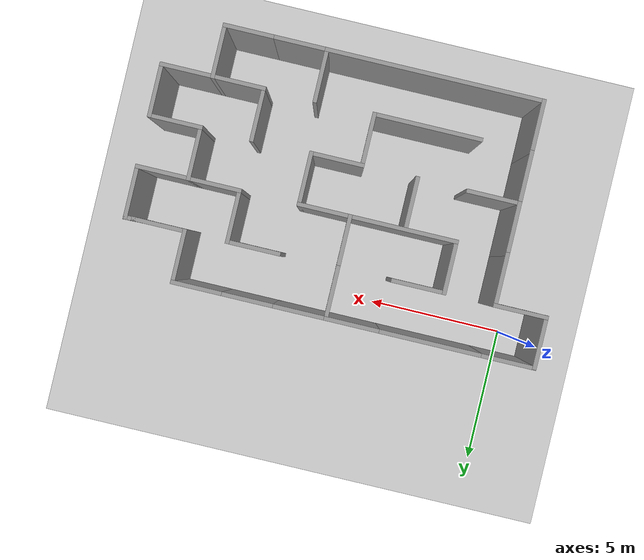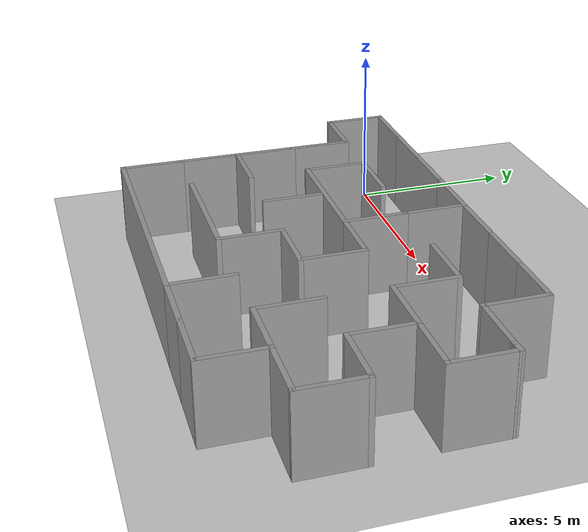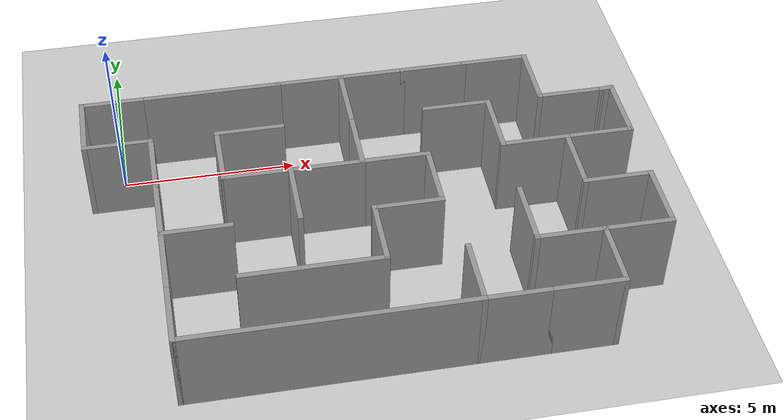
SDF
<sdf version="1.7">
 <world name="default">
  <light name="sun" type="directional">
   <pose>0 0 10 0 -0 0</pose>
   <diffuse>0.8 0.8 0.8 1</diffuse>
   <specular>0.2 0.2 0.2 1</specular>
   <attenuation>
    <range>1000</range>
    <constant>0.9</constant>
    <linear>0.01</linear>
    <quadratic>0.001</quadratic>
   </attenuation>
   <direction>-0.5 0.1 -0.9</direction>
   <spot><inner_angle>0</inner_angle><outer_angle>0</outer_angle><falloff>0</falloff></spot>
  </light>
  <model name="ground_plane">
   <static>1</static>
   <link name="link">
    <collision name="collision">
     <geometry><plane><normal>0 0 1</normal><size>100 100</size></plane></geometry>
     <surface>
      <contact><collide_bitmask>65535</collide_bitmask></contact>
      <friction><ode><mu>100</mu><mu2>50</mu2></ode></friction>
     </surface>
    </collision>
    <visual name="visual">
     <cast_shadows>0</cast_shadows>
     <geometry><plane><normal>0 0 1</normal><size>100 100</size></plane></geometry>
     <material>
      <script><uri>file://media/materials/scripts/gazebo.material</uri><name>Gazebo/Grey</name></script>
     </material>
    </visual>
   </link>
  </model>
  <gravity>0 0 -9.8</gravity>
  <magnetic_field>6e-06 2.3e-05 -4.2e-05</magnetic_field>
  <atmosphere type="adiabatic"/>
  <physics type="ode">
   <max_step_size>0.001</max_step_size>
   <real_time_factor>1</real_time_factor>
   <real_time_update_rate>1000</real_time_update_rate>
  </physics>
  <scene><ambient>0.4 0.4 0.4 1</ambient><background>0.7 0.7 0.7 1</background><shadows>1</shadows></scene>
  <spherical_coordinates>
   <surface_model>EARTH_WGS84</surface_model>
   <latitude_deg>0</latitude_deg>
   <longitude_deg>0</longitude_deg>
   <elevation>0</elevation>
   <heading_deg>0</heading_deg>
  </spherical_coordinates>
  <model name="m1">
   <pose>6.68712 -3.76375 0 0 -0 0</pose>
   <link name="Wall_0">
    <collision name="Wall_0_Collision">
     <geometry><box><size>2 0.15 2.5</size></box></geometry>
     <pose>0 0 1.25 0 -0 0</pose>
    </collision>
    <visual name="Wall_0_Visual">
     <pose>0 0 1.25 0 -0 0</pose>
     <geometry><box><size>2 0.15 2.5</size></box></geometry>
     <material>
      <script><uri>file://media/materials/scripts/gazebo.material</uri><name>Gazebo/Grey</name></script>
      <ambient>1 1 1 1</ambient>
     </material>
     <meta><layer>0</layer></meta>
    </visual>
    <pose>-6.70212 2.78375 0 0 -0 0</pose>
   </link>
   <link name="Wall_10">
    <collision name="Wall_10_Collision">
     <geometry><box><size>2 0.15 2.5</size></box></geometry>
     <pose>0 0 1.25 0 -0 0</pose>
    </collision>
    <visual name="Wall_10_Visual">
     <pose>0 0 1.25 0 -0 0</pose>
     <geometry><box><size>2 0.15 2.5</size></box></geometry>
     <material>
      <script><uri>file://media/materials/scripts/gazebo.material</uri><name>Gazebo/Grey</name></script>
      <ambient>1 1 1 1</ambient>
     </material>
     <meta><layer>0</layer></meta>
    </visual>
    <pose>-1.00212 4.61625 0 0 -0 0</pose>
   </link>
   <link name="Wall_11">
    <collision name="Wall_11_Collision">
     <geometry><box><size>2 0.15 2.5</size></box></geometry>
     <pose>0 0 1.25 0 -0 0</pose>
    </collision>
    <visual name="Wall_11_Visual">
     <pose>0 0 1.25 0 -0 0</pose>
     <geometry><box><size>2 0.15 2.5</size></box></geometry>
     <material>
      <script><uri>file://media/materials/scripts/gazebo.material</uri><name>Gazebo/Grey</name></script>
      <ambient>1 1 1 1</ambient>
     </material>
     <meta><layer>0</layer></meta>
    </visual>
    <pose>-0.077119 3.69125 0 0 -0 -1.5708</pose>
   </link>
   <link name="Wall_12">
    <collision name="Wall_12_Collision">
     <geometry><box><size>2 0.15 2.5</size></box></geometry>
     <pose>0 0 1.25 0 -0 0</pose>
    </collision>
    <visual name="Wall_12_Visual">
     <pose>0 0 1.25 0 -0 0</pose>
     <geometry><box><size>2 0.15 2.5</size></box></geometry>
     <material>
      <script><uri>file://media/materials/scripts/gazebo.material</uri><name>Gazebo/Grey</name></script>
      <ambient>1 1 1 1</ambient>
     </material>
     <meta><layer>0</layer></meta>
    </visual>
    <pose>-0.077119 1.84126 0 0 -0 -1.5708</pose>
   </link>
   <link name="Wall_13">
    <collision name="Wall_13_Collision">
     <geometry><box><size>4 0.15 2.5</size></box></geometry>
     <pose>0 0 1.25 0 -0 0</pose>
    </collision>
    <visual name="Wall_13_Visual">
     <pose>0 0 1.25 0 -0 0</pose>
     <geometry><box><size>4 0.15 2.5</size></box></geometry>
     <material>
      <script><uri>file://media/materials/scripts/gazebo.material</uri><name>Gazebo/Grey</name></script>
      <ambient>1 1 1 1</ambient>
     </material>
     <meta><layer>0</layer></meta>
    </visual>
    <pose>-2.00212 0.916255 0 0 -0 3.14159</pose>
   </link>
   <link name="Wall_14">
    <collision name="Wall_14_Collision">
     <geometry><box><size>2 0.15 2.5</size></box></geometry>
     <pose>0 0 1.25 0 -0 0</pose>
    </collision>
    <visual name="Wall_14_Visual">
     <pose>0 0 1.25 0 -0 0</pose>
     <geometry><box><size>2 0.15 2.5</size></box></geometry>
     <material>
      <script><uri>file://media/materials/scripts/gazebo.material</uri><name>Gazebo/Grey</name></script>
      <ambient>1 1 1 1</ambient>
     </material>
     <meta><layer>0</layer></meta>
    </visual>
    <pose>-3.92712 1.84126 0 0 -0 1.5708</pose>
   </link>
   <link name="Wall_15">
    <collision name="Wall_15_Collision">
     <geometry><box><size>2 0.15 2.5</size></box></geometry>
     <pose>0 0 1.25 0 -0 0</pose>
    </collision>
    <visual name="Wall_15_Visual">
     <pose>0 0 1.25 0 -0 0</pose>
     <geometry><box><size>2 0.15 2.5</size></box></geometry>
     <material>
      <script><uri>file://media/materials/scripts/gazebo.material</uri><name>Gazebo/Grey</name></script>
      <ambient>1 1 1 1</ambient>
     </material>
     <meta><layer>0</layer></meta>
    </visual>
    <pose>-3.00212 2.76626 0 0 -0 0</pose>
   </link>
   <link name="Wall_17">
    <collision name="Wall_17_Collision">
     <geometry><box><size>2 0.15 2.5</size></box></geometry>
     <pose>0 0 1.25 0 -0 0</pose>
    </collision>
    <visual name="Wall_17_Visual">
     <pose>0 0 1.25 0 -0 0</pose>
     <geometry><box><size>2 0.15 2.5</size></box></geometry>
     <material>
      <script><uri>file://media/materials/scripts/gazebo.material</uri><name>Gazebo/Grey</name></script>
      <ambient>1 1 1 1</ambient>
     </material>
     <meta><layer>0</layer></meta>
    </visual>
    <pose>-5.77712 1.85875 0 0 -0 -1.5708</pose>
   </link>
   <link name="Wall_2">
    <collision name="Wall_2_Collision">
     <geometry><box><size>1.96502 0.15 2.5</size></box></geometry>
     <pose>0 0 1.25 0 -0 0</pose>
    </collision>
    <visual name="Wall_2_Visual">
     <pose>0 0 1.25 0 -0 0</pose>
     <geometry><box><size>1.96502 0.15 2.5</size></box></geometry>
     <material>
      <script><uri>file://media/materials/scripts/gazebo.material</uri><name>Gazebo/Grey</name></script>
      <ambient>1 1 1 1</ambient>
     </material>
     <meta><layer>0</layer></meta>
    </visual>
    <pose>-7.62712 3.69125 0 0 -0 1.5708</pose>
   </link>
   <link name="Wall_20">
    <collision name="Wall_20_Collision">
     <geometry><box><size>2 0.15 2.5</size></box></geometry>
     <pose>0 0 1.25 0 -0 0</pose>
    </collision>
    <visual name="Wall_20_Visual">
     <pose>0 0 1.25 0 -0 0</pose>
     <geometry><box><size>2 0.15 2.5</size></box></geometry>
     <material>
      <script><uri>file://media/materials/scripts/gazebo.material</uri><name>Gazebo/Grey</name></script>
      <ambient>1 1 1 1</ambient>
     </material>
     <meta><layer>0</layer></meta>
    </visual>
    <pose>-5.77712 0.008745 0 0 -0 -1.5708</pose>
   </link>
   <link name="Wall_21">
    <collision name="Wall_21_Collision">
     <geometry><box><size>2 0.15 2.5</size></box></geometry>
     <pose>0 0 1.25 0 -0 0</pose>
    </collision>
    <visual name="Wall_21_Visual">
     <pose>0 0 1.25 0 -0 0</pose>
     <geometry><box><size>2 0.15 2.5</size></box></geometry>
     <material>
      <script><uri>file://media/materials/scripts/gazebo.material</uri><name>Gazebo/Grey</name></script>
      <ambient>1 1 1 1</ambient>
     </material>
     <meta><layer>0</layer></meta>
    </visual>
    <pose>-4.85212 -0.916255 0 0 -0 0</pose>
   </link>
   <link name="Wall_25">
    <collision name="Wall_25_Collision">
     <geometry><box><size>2 0.15 2.5</size></box></geometry>
     <pose>0 0 1.25 0 -0 0</pose>
    </collision>
    <visual name="Wall_25_Visual">
     <pose>0 0 1.25 0 -0 0</pose>
     <geometry><box><size>2 0.15 2.5</size></box></geometry>
     <material>
      <script><uri>file://media/materials/scripts/gazebo.material</uri><name>Gazebo/Grey</name></script>
      <ambient>1 1 1 1</ambient>
     </material>
     <meta><layer>0</layer></meta>
    </visual>
    <pose>-5.77712 -1.84126 0 0 -0 -1.5708</pose>
   </link>
   <link name="Wall_27">
    <collision name="Wall_27_Collision">
     <geometry><box><size>2 0.15 2.5</size></box></geometry>
     <pose>0 0 1.25 0 -0 0</pose>
    </collision>
    <visual name="Wall_27_Visual">
     <pose>0 0 1.25 0 -0 0</pose>
     <geometry><box><size>2 0.15 2.5</size></box></geometry>
     <material>
      <script><uri>file://media/materials/scripts/gazebo.material</uri><name>Gazebo/Grey</name></script>
      <ambient>1 1 1 1</ambient>
     </material>
     <meta><layer>0</layer></meta>
    </visual>
    <pose>-5.77712 -3.69125 0 0 -0 -1.5708</pose>
   </link>
   <link name="Wall_28">
    <collision name="Wall_28_Collision">
     <geometry><box><size>8 0.15 2.5</size></box></geometry>
     <pose>0 0 1.25 0 -0 0</pose>
    </collision>
    <visual name="Wall_28_Visual">
     <pose>0 0 1.25 0 -0 0</pose>
     <geometry><box><size>8 0.15 2.5</size></box></geometry>
     <material>
      <script><uri>file://media/materials/scripts/gazebo.material</uri><name>Gazebo/Grey</name></script>
      <ambient>1 1 1 1</ambient>
     </material>
     <meta><layer>0</layer></meta>
    </visual>
    <pose>-1.85212 -4.61625 0 0 -0 0</pose>
   </link>
   <link name="Wall_29">
    <collision name="Wall_29_Collision">
     <geometry><box><size>2 0.15 2.5</size></box></geometry>
     <pose>0 0 1.25 0 -0 0</pose>
    </collision>
    <visual name="Wall_29_Visual">
     <pose>0 0 1.25 0 -0 0</pose>
     <geometry><box><size>2 0.15 2.5</size></box></geometry>
     <material>
      <script><uri>file://media/materials/scripts/gazebo.material</uri><name>Gazebo/Grey</name></script>
      <ambient>1 1 1 1</ambient>
     </material>
     <meta><layer>0</layer></meta>
    </visual>
    <pose>2.07288 -3.69125 0 0 -0 1.5708</pose>
   </link>
   <link name="Wall_3">
    <collision name="Wall_3_Collision">
     <geometry><box><size>2 0.15 2.5</size></box></geometry>
     <pose>0 0 1.25 0 -0 0</pose>
    </collision>
    <visual name="Wall_3_Visual">
     <pose>0 0 1.25 0 -0 0</pose>
     <geometry><box><size>2 0.15 2.5</size></box></geometry>
     <material>
      <script><uri>file://media/materials/scripts/gazebo.material</uri><name>Gazebo/Grey</name></script>
      <ambient>1 1 1 1</ambient>
     </material>
     <meta><layer>0</layer></meta>
    </visual>
    <pose>-6.70212 4.61625 0 0 -0 0</pose>
   </link>
   <link name="Wall_32">
    <collision name="Wall_32_Collision">
     <geometry><box><size>2 0.15 2.5</size></box></geometry>
     <pose>0 0 1.25 0 -0 0</pose>
    </collision>
    <visual name="Wall_32_Visual">
     <pose>0 0 1.25 0 -0 0</pose>
     <geometry><box><size>2 0.15 2.5</size></box></geometry>
     <material>
      <script><uri>file://media/materials/scripts/gazebo.material</uri><name>Gazebo/Grey</name></script>
      <ambient>1 1 1 1</ambient>
     </material>
     <meta><layer>0</layer></meta>
    </visual>
    <pose>-2.07712 -0.008745 0 0 -0 -1.5708</pose>
   </link>
   <link name="Wall_34">
    <collision name="Wall_34_Collision">
     <geometry><box><size>2 0.15 2.5</size></box></geometry>
     <pose>0 0 1.25 0 -0 0</pose>
    </collision>
    <visual name="Wall_34_Visual">
     <pose>0 0 1.25 0 -0 0</pose>
     <geometry><box><size>2 0.15 2.5</size></box></geometry>
     <material>
      <script><uri>file://media/materials/scripts/gazebo.material</uri><name>Gazebo/Grey</name></script>
      <ambient>1 1 1 1</ambient>
     </material>
     <meta><layer>0</layer></meta>
    </visual>
    <pose>0.847881 0.916255 0 0 -0 0</pose>
   </link>
   <link name="Wall_35">
    <collision name="Wall_35_Collision">
     <geometry><box><size>2 0.15 2.5</size></box></geometry>
     <pose>0 0 1.25 0 -0 0</pose>
    </collision>
    <visual name="Wall_35_Visual">
     <pose>0 0 1.25 0 -0 0</pose>
     <geometry><box><size>2 0.15 2.5</size></box></geometry>
     <material>
      <script><uri>file://media/materials/scripts/gazebo.material</uri><name>Gazebo/Grey</name></script>
      <ambient>1 1 1 1</ambient>
     </material>
     <meta><layer>0</layer></meta>
    </visual>
    <pose>1.77288 -0.008745 0 0 -0 -1.5708</pose>
   </link>
   <link name="Wall_36">
    <collision name="Wall_36_Collision">
     <geometry><box><size>2 0.15 2.5</size></box></geometry>
     <pose>0 0 1.25 0 -0 0</pose>
    </collision>
    <visual name="Wall_36_Visual">
     <pose>0 0 1.25 0 -0 0</pose>
     <geometry><box><size>2 0.15 2.5</size></box></geometry>
     <material>
      <script><uri>file://media/materials/scripts/gazebo.material</uri><name>Gazebo/Grey</name></script>
      <ambient>1 1 1 1</ambient>
     </material>
     <meta><layer>0</layer></meta>
    </visual>
    <pose>0.847881 -0.933745 0 0 -0 3.14159</pose>
   </link>
   <link name="Wall_37">
    <collision name="Wall_37_Collision">
     <geometry><box><size>2 0.15 2.5</size></box></geometry>
     <pose>0 0 1.25 0 -0 0</pose>
    </collision>
    <visual name="Wall_37_Visual">
     <pose>0 0 1.25 0 -0 0</pose>
     <geometry><box><size>2 0.15 2.5</size></box></geometry>
     <material>
      <script><uri>file://media/materials/scripts/gazebo.material</uri><name>Gazebo/Grey</name></script>
      <ambient>1 1 1 1</ambient>
     </material>
     <meta><layer>0</layer></meta>
    </visual>
    <pose>-0.077119 -1.85875 0 0 -0 -1.5708</pose>
   </link>
   <link name="Wall_38">
    <collision name="Wall_38_Collision">
     <geometry><box><size>4 0.15 2.5</size></box></geometry>
     <pose>0 0 1.25 0 -0 0</pose>
    </collision>
    <visual name="Wall_38_Visual">
     <pose>0 0 1.25 0 -0 0</pose>
     <geometry><box><size>4 0.15 2.5</size></box></geometry>
     <material>
      <script><uri>file://media/materials/scripts/gazebo.material</uri><name>Gazebo/Grey</name></script>
      <ambient>1 1 1 1</ambient>
     </material>
     <meta><layer>0</layer></meta>
    </visual>
    <pose>-2.00212 -2.78375 0 0 -0 3.14159</pose>
   </link>
   <link name="Wall_41">
    <collision name="Wall_41_Collision">
     <geometry><box><size>2 0.15 2.5</size></box></geometry>
     <pose>0 0 1.25 0 -0 0</pose>
    </collision>
    <visual name="Wall_41_Visual">
     <pose>0 0 1.25 0 -0 0</pose>
     <geometry><box><size>2 0.15 2.5</size></box></geometry>
     <material>
      <script><uri>file://media/materials/scripts/gazebo.material</uri><name>Gazebo/Grey</name></script>
      <ambient>1 1 1 1</ambient>
     </material>
     <meta><layer>0</layer></meta>
    </visual>
    <pose>0.847881 4.61625 0 0 -0 0</pose>
   </link>
   <link name="Wall_42">
    <collision name="Wall_42_Collision">
     <geometry><box><size>2 0.15 2.5</size></box></geometry>
     <pose>0 0 1.25 0 -0 0</pose>
    </collision>
    <visual name="Wall_42_Visual">
     <pose>0 0 1.25 0 -0 0</pose>
     <geometry><box><size>2 0.15 2.5</size></box></geometry>
     <material>
      <script><uri>file://media/materials/scripts/gazebo.material</uri><name>Gazebo/Grey</name></script>
      <ambient>1 1 1 1</ambient>
     </material>
     <meta><layer>0</layer></meta>
    </visual>
    <pose>2.69788 4.61625 0 0 -0 0</pose>
   </link>
   <link name="Wall_43">
    <collision name="Wall_43_Collision">
     <geometry><box><size>2 0.15 2.5</size></box></geometry>
     <pose>0 0 1.25 0 -0 0</pose>
    </collision>
    <visual name="Wall_43_Visual">
     <pose>0 0 1.25 0 -0 0</pose>
     <geometry><box><size>2 0.15 2.5</size></box></geometry>
     <material>
      <script><uri>file://media/materials/scripts/gazebo.material</uri><name>Gazebo/Grey</name></script>
      <ambient>1 1 1 1</ambient>
     </material>
     <meta><layer>0</layer></meta>
    </visual>
    <pose>4.54788 4.61625 0 0 -0 0</pose>
   </link>
   <link name="Wall_44">
    <collision name="Wall_44_Collision">
     <geometry><box><size>2 0.15 2.5</size></box></geometry>
     <pose>0 0 1.25 0 -0 0</pose>
    </collision>
    <visual name="Wall_44_Visual">
     <pose>0 0 1.25 0 -0 0</pose>
     <geometry><box><size>2 0.15 2.5</size></box></geometry>
     <material>
      <script><uri>file://media/materials/scripts/gazebo.material</uri><name>Gazebo/Grey</name></script>
      <ambient>1 1 1 1</ambient>
     </material>
     <meta><layer>0</layer></meta>
    </visual>
    <pose>5.47288 3.69125 0 0 -0 -1.5708</pose>
   </link>
   <link name="Wall_46">
    <collision name="Wall_46_Collision">
     <geometry><box><size>2 0.15 2.5</size></box></geometry>
     <pose>0 0 1.25 0 -0 0</pose>
    </collision>
    <visual name="Wall_46_Visual">
     <pose>0 0 1.25 0 -0 0</pose>
     <geometry><box><size>2 0.15 2.5</size></box></geometry>
     <material>
      <script><uri>file://media/materials/scripts/gazebo.material</uri><name>Gazebo/Grey</name></script>
      <ambient>1 1 1 1</ambient>
     </material>
     <meta><layer>0</layer></meta>
    </visual>
    <pose>2.99788 -4.61625 0 0 -0 0</pose>
   </link>
   <link name="Wall_47">
    <collision name="Wall_47_Collision">
     <geometry><box><size>2 0.15 2.5</size></box></geometry>
     <pose>0 0 1.25 0 -0 0</pose>
    </collision>
    <visual name="Wall_47_Visual">
     <pose>0 0 1.25 0 -0 0</pose>
     <geometry><box><size>2 0.15 2.5</size></box></geometry>
     <material>
      <script><uri>file://media/materials/scripts/gazebo.material</uri><name>Gazebo/Grey</name></script>
      <ambient>1 1 1 1</ambient>
     </material>
     <meta><layer>0</layer></meta>
    </visual>
    <pose>4.84788 -4.61625 0 0 -0 0</pose>
   </link>
   <link name="Wall_48">
    <collision name="Wall_48_Collision">
     <geometry><box><size>2 0.15 2.5</size></box></geometry>
     <pose>0 0 1.25 0 -0 0</pose>
    </collision>
    <visual name="Wall_48_Visual">
     <pose>0 0 1.25 0 -0 0</pose>
     <geometry><box><size>2 0.15 2.5</size></box></geometry>
     <material>
      <script><uri>file://media/materials/scripts/gazebo.material</uri><name>Gazebo/Grey</name></script>
      <ambient>1 1 1 1</ambient>
     </material>
     <meta><layer>0</layer></meta>
    </visual>
    <pose>5.77288 -3.69125 0 0 -0 1.5708</pose>
   </link>
   <link name="Wall_49">
    <collision name="Wall_49_Collision">
     <geometry><box><size>2 0.15 2.5</size></box></geometry>
     <pose>0 0 1.25 0 -0 0</pose>
    </collision>
    <visual name="Wall_49_Visual">
     <pose>0 0 1.25 0 -0 0</pose>
     <geometry><box><size>2 0.15 2.5</size></box></geometry>
     <material>
      <script><uri>file://media/materials/scripts/gazebo.material</uri><name>Gazebo/Grey</name></script>
      <ambient>1 1 1 1</ambient>
     </material>
     <meta><layer>0</layer></meta>
    </visual>
    <pose>4.84788 -2.76626 0 0 -0 3.14159</pose>
   </link>
   <link name="Wall_50">
    <collision name="Wall_50_Collision">
     <geometry><box><size>2 0.15 2.5</size></box></geometry>
     <pose>0 0 1.25 0 -0 0</pose>
    </collision>
    <visual name="Wall_50_Visual">
     <pose>0 0 1.25 0 -0 0</pose>
     <geometry><box><size>2 0.15 2.5</size></box></geometry>
     <material>
      <script><uri>file://media/materials/scripts/gazebo.material</uri><name>Gazebo/Grey</name></script>
      <ambient>1 1 1 1</ambient>
     </material>
     <meta><layer>0</layer></meta>
    </visual>
    <pose>3.92288 -1.84126 0 0 -0 1.5708</pose>
   </link>
   <link name="Wall_54">
    <collision name="Wall_54_Collision">
     <geometry><box><size>2 0.15 2.5</size></box></geometry>
     <pose>0 0 1.25 0 -0 0</pose>
    </collision>
    <visual name="Wall_54_Visual">
     <pose>0 0 1.25 0 -0 0</pose>
     <geometry><box><size>2 0.15 2.5</size></box></geometry>
     <material>
      <script><uri>file://media/materials/scripts/gazebo.material</uri><name>Gazebo/Grey</name></script>
      <ambient>1 1 1 1</ambient>
     </material>
     <meta><layer>0</layer></meta>
    </visual>
    <pose>6.69788 -2.76626 0 0 -0 0</pose>
   </link>
   <link name="Wall_55">
    <collision name="Wall_55_Collision">
     <geometry><box><size>2 0.15 2.5</size></box></geometry>
     <pose>0 0 1.25 0 -0 0</pose>
    </collision>
    <visual name="Wall_55_Visual">
     <pose>0 0 1.25 0 -0 0</pose>
     <geometry><box><size>2 0.15 2.5</size></box></geometry>
     <material>
      <script><uri>file://media/materials/scripts/gazebo.material</uri><name>Gazebo/Grey</name></script>
      <ambient>1 1 1 1</ambient>
     </material>
     <meta><layer>0</layer></meta>
    </visual>
    <pose>7.62288 -1.84126 0 0 -0 1.5708</pose>
   </link>
   <link name="Wall_56">
    <collision name="Wall_56_Collision">
     <geometry><box><size>2 0.15 2.5</size></box></geometry>
     <pose>0 0 1.25 0 -0 0</pose>
    </collision>
    <visual name="Wall_56_Visual">
     <pose>0 0 1.25 0 -0 0</pose>
     <geometry><box><size>2 0.15 2.5</size></box></geometry>
     <material>
      <script><uri>file://media/materials/scripts/gazebo.material</uri><name>Gazebo/Grey</name></script>
      <ambient>1 1 1 1</ambient>
     </material>
     <meta><layer>0</layer></meta>
    </visual>
    <pose>6.69788 -0.916255 0 0 -0 3.14159</pose>
   </link>
   <link name="Wall_57">
    <collision name="Wall_57_Collision">
     <geometry><box><size>2 0.15 2.5</size></box></geometry>
     <pose>0 0 1.25 0 -0 0</pose>
    </collision>
    <visual name="Wall_57_Visual">
     <pose>0 0 1.25 0 -0 0</pose>
     <geometry><box><size>2 0.15 2.5</size></box></geometry>
     <material>
      <script><uri>file://media/materials/scripts/gazebo.material</uri><name>Gazebo/Grey</name></script>
      <ambient>1 1 1 1</ambient>
     </material>
     <meta><layer>0</layer></meta>
    </visual>
    <pose>5.77288 0.008745 0 0 -0 1.5708</pose>
   </link>
   <link name="Wall_58">
    <collision name="Wall_58_Collision">
     <geometry><box><size>2 0.15 2.5</size></box></geometry>
     <pose>0 0 1.25 0 -0 0</pose>
    </collision>
    <visual name="Wall_58_Visual">
     <pose>0 0 1.25 0 -0 0</pose>
     <geometry><box><size>2 0.15 2.5</size></box></geometry>
     <material>
      <script><uri>file://media/materials/scripts/gazebo.material</uri><name>Gazebo/Grey</name></script>
      <ambient>1 1 1 1</ambient>
     </material>
     <meta><layer>0</layer></meta>
    </visual>
    <pose>4.84788 0.933745 0 0 -0 3.14159</pose>
   </link>
   <link name="Wall_59">
    <collision name="Wall_59_Collision">
     <geometry><box><size>2 0.15 2.5</size></box></geometry>
     <pose>0 0 1.25 0 -0 0</pose>
    </collision>
    <visual name="Wall_59_Visual">
     <pose>0 0 1.25 0 -0 0</pose>
     <geometry><box><size>2 0.15 2.5</size></box></geometry>
     <material>
      <script><uri>file://media/materials/scripts/gazebo.material</uri><name>Gazebo/Grey</name></script>
      <ambient>1 1 1 1</ambient>
     </material>
     <meta><layer>0</layer></meta>
    </visual>
    <pose>3.92288 1.85875 0 0 -0 1.5708</pose>
   </link>
   <link name="Wall_60">
    <collision name="Wall_60_Collision">
     <geometry><box><size>2 0.15 2.5</size></box></geometry>
     <pose>0 0 1.25 0 -0 0</pose>
    </collision>
    <visual name="Wall_60_Visual">
     <pose>0 0 1.25 0 -0 0</pose>
     <geometry><box><size>2 0.15 2.5</size></box></geometry>
     <material>
      <script><uri>file://media/materials/scripts/gazebo.material</uri><name>Gazebo/Grey</name></script>
      <ambient>1 1 1 1</ambient>
     </material>
     <meta><layer>0</layer></meta>
    </visual>
    <pose>2.99788 2.78375 0 0 -0 3.14159</pose>
   </link>
   <link name="Wall_62">
    <collision name="Wall_62_Collision">
     <geometry><box><size>2 0.15 2.5</size></box></geometry>
     <pose>0 0 1.25 0 -0 0</pose>
    </collision>
    <visual name="Wall_62_Visual">
     <pose>0 0 1.25 0 -0 0</pose>
     <geometry><box><size>2 0.15 2.5</size></box></geometry>
     <material>
      <script><uri>file://media/materials/scripts/gazebo.material</uri><name>Gazebo/Grey</name></script>
      <ambient>1 1 1 1</ambient>
     </material>
     <meta><layer>0</layer></meta>
    </visual>
    <pose>6.39788 2.76626 0 0 -0 0</pose>
   </link>
   <link name="Wall_67">
    <collision name="Wall_67_Collision">
     <geometry><box><size>2 0.15 2.5</size></box></geometry>
     <pose>0 0 1.25 0 -0 0</pose>
    </collision>
    <visual name="Wall_67_Visual">
     <pose>0 0 1.25 0 -0 0</pose>
     <geometry><box><size>2 0.15 2.5</size></box></geometry>
     <material>
      <script><uri>file://media/materials/scripts/gazebo.material</uri><name>Gazebo/Grey</name></script>
      <ambient>1 1 1 1</ambient>
     </material>
     <meta><layer>0</layer></meta>
    </visual>
    <pose>6.69788 0.933745 0 0 -0 0</pose>
   </link>
   <link name="Wall_68">
    <collision name="Wall_68_Collision">
     <geometry><box><size>2 0.15 2.5</size></box></geometry>
     <pose>0 0 1.25 0 -0 0</pose>
    </collision>
    <visual name="Wall_68_Visual">
     <pose>0 0 1.25 0 -0 0</pose>
     <geometry><box><size>2 0.15 2.5</size></box></geometry>
     <material>
      <script><uri>file://media/materials/scripts/gazebo.material</uri><name>Gazebo/Grey</name></script>
      <ambient>1 1 1 1</ambient>
     </material>
     <meta><layer>0</layer></meta>
    </visual>
    <pose>7.62288 1.85875 0 0 -0 1.5708</pose>
   </link>
   <link name="Wall_69">
    <collision name="Wall_69_Collision">
     <geometry><box><size>0.450509 0.15 2.5</size></box></geometry>
     <pose>0 0 1.25 0 -0 0</pose>
    </collision>
    <visual name="Wall_69_Visual">
     <pose>0 0 1.25 0 -0 0</pose>
     <geometry><box><size>0.450509 0.15 2.5</size></box></geometry>
     <material>
      <script><uri>file://media/materials/scripts/gazebo.material</uri><name>Gazebo/Grey</name></script>
      <ambient>1 1 1 1</ambient>
     </material>
     <meta><layer>0</layer></meta>
    </visual>
    <pose>7.47288 2.775 0 0 -0 -3.08336</pose>
   </link>
   <link name="Wall_9">
    <collision name="Wall_9_Collision">
     <geometry><box><size>4 0.15 2.5</size></box></geometry>
     <pose>0 0 1.25 0 -0 0</pose>
    </collision>
    <visual name="Wall_9_Visual">
     <pose>0 0 1.25 0 -0 0</pose>
     <geometry><box><size>4 0.15 2.5</size></box></geometry>
     <material>
      <script><uri>file://media/materials/scripts/gazebo.material</uri><name>Gazebo/Grey</name></script>
      <ambient>1 1 1 1</ambient>
     </material>
     <meta><layer>0</layer></meta>
    </visual>
    <pose>-3.85212 4.61625 0 0 -0 0</pose>
   </link>
   <static>1</static>
  </model>
 </world>
</sdf>
